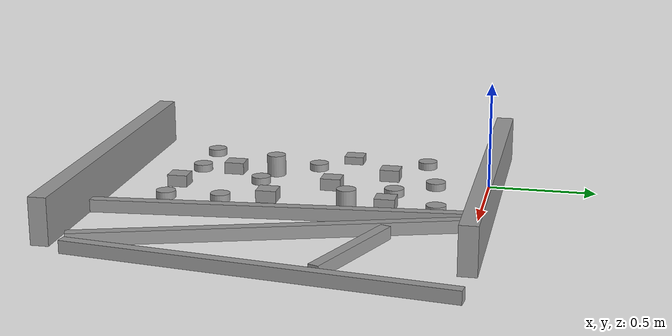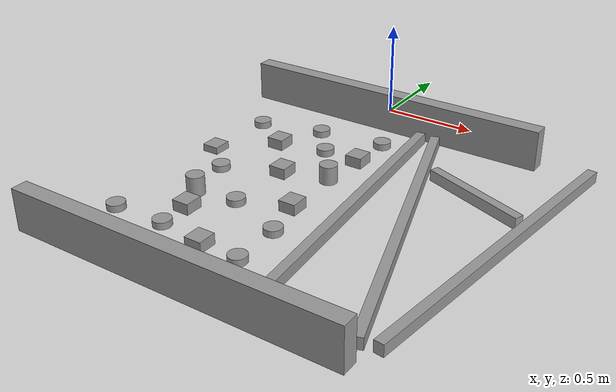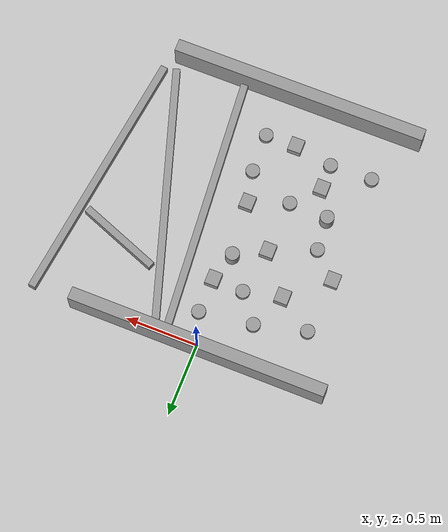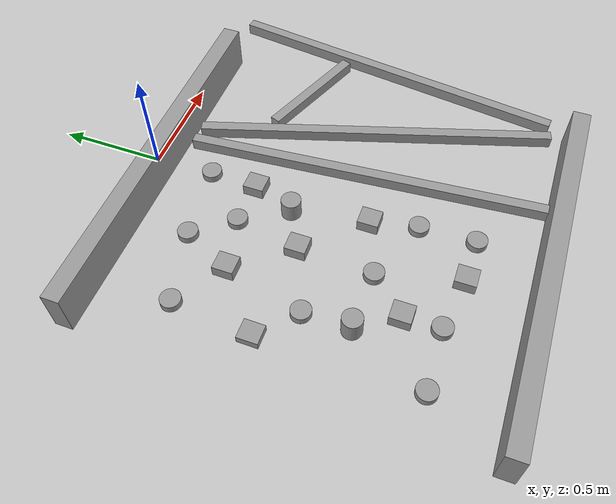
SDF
<sdf version="1.7">
 <model name="complex_terrain">
  <link name="link">
   <inertial>
    <mass>1</mass>
    <inertia>
     <ixx>0.166667</ixx>
     <ixy>0</ixy>
     <ixz>0</ixz>
     <iyy>0.166667</iyy>
     <iyz>0</iyz>
     <izz>0.166667</izz>
    </inertia>
   </inertial>
   <visual name="visual">
    <geometry><box><size>1.79287 0.085937 0.224799</size></box></geometry>
    <material>
     <script><name>Gazebo/Grey</name><uri>file://media/materials/scripts/gazebo.material</uri></script>
     <shader type="pixel"><normal_map>__default__</normal_map></shader>
     <ambient>1 1 1 1</ambient>
     <diffuse>0.7 0.7 0.7 1</diffuse>
     <specular>0.01 0.01 0.01 1</specular>
     <emissive>0 0 0 1</emissive>
    </material>
   </visual>
   <collision name="collision">
    <geometry><box><size>1.79287 0.085937 0.224799</size></box></geometry>
    <surface>
     <friction>
      <ode><mu>1</mu><mu2>1</mu2><fdir1>0 0 0</fdir1><slip1>0</slip1><slip2>0</slip2></ode>
      <torsional>
       <coefficient>1</coefficient>
       <patch_radius>0</patch_radius>
       <surface_radius>0</surface_radius>
       <use_patch_radius>1</use_patch_radius>
       <ode><slip>0</slip></ode>
      </torsional>
     </friction>
     <bounce><restitution_coefficient>0</restitution_coefficient><threshold>1e+06</threshold></bounce>
     <contact>
      <collide_without_contact>0</collide_without_contact>
      <collide_without_contact_bitmask>1</collide_without_contact_bitmask>
      <collide_bitmask>1</collide_bitmask>
      <ode>
       <soft_cfm>0</soft_cfm>
       <soft_erp>0.2</soft_erp>
       <kp>1e+13</kp>
       <kd>1</kd>
       <max_vel>0.01</max_vel>
       <min_depth>0</min_depth>
      </ode>
      <bullet>
       <split_impulse>1</split_impulse>
       <split_impulse_penetration_threshold>-0.01</split_impulse_penetration_threshold>
       <soft_cfm>0</soft_cfm>
       <soft_erp>0.2</soft_erp>
       <kp>1e+13</kp>
       <kd>1</kd>
      </bullet>
     </contact>
    </surface>
   </collision>
  </link>
  <link name="link_1">
   <inertial>
    <mass>0.00035226</mass>
    <inertia><ixx>2.5e-07</ixx><ixy>0</ixy><ixz>0</ixz><iyy>2.5e-07</iyy><iyz>0</iyz><izz>4.2e-07</izz></inertia>
   </inertial>
   <pose>-0.496384 -0.928451 -0.09349 -1e-06 4.2e-05 3e-05</pose>
   <visual name="visual">
    <geometry><cylinder><radius>0.048621</radius><length>0.0373063</length></cylinder></geometry>
    <material>
     <lighting>1</lighting>
     <script><uri>file://media/materials/scripts/gazebo.material</uri><name>Gazebo/Grey</name></script>
     <shader type="pixel"><normal_map>__default__</normal_map></shader>
     <ambient>1 1 1 1</ambient>
     <diffuse>0.7 0.7 0.7 1</diffuse>
     <specular>0.01 0.01 0.01 1</specular>
     <emissive>0 0 0 1</emissive>
    </material>
   </visual>
   <collision name="collision">
    <geometry><cylinder><radius>0.048621</radius><length>0.037306</length></cylinder></geometry>
    <surface>
     <friction>
      <ode><mu>1</mu><mu2>1</mu2><fdir1>0 0 0</fdir1><slip1>0</slip1><slip2>0</slip2></ode>
      <torsional>
       <coefficient>1</coefficient>
       <patch_radius>0</patch_radius>
       <surface_radius>0</surface_radius>
       <use_patch_radius>1</use_patch_radius>
       <ode><slip>0</slip></ode>
      </torsional>
     </friction>
     <bounce><restitution_coefficient>0</restitution_coefficient><threshold>1e+06</threshold></bounce>
     <contact>
      <collide_without_contact>0</collide_without_contact>
      <collide_without_contact_bitmask>1</collide_without_contact_bitmask>
      <collide_bitmask>1</collide_bitmask>
      <ode>
       <soft_cfm>0</soft_cfm>
       <soft_erp>0.2</soft_erp>
       <kp>1e+13</kp>
       <kd>1</kd>
       <max_vel>0.01</max_vel>
       <min_depth>0</min_depth>
      </ode>
      <bullet>
       <split_impulse>1</split_impulse>
       <split_impulse_penetration_threshold>-0.01</split_impulse_penetration_threshold>
       <soft_cfm>0</soft_cfm>
       <soft_erp>0.2</soft_erp>
       <kp>1e+13</kp>
       <kd>1</kd>
      </bullet>
     </contact>
    </surface>
   </collision>
  </link>
  <link name="link_1_clone">
   <inertial>
    <mass>0.00035226</mass>
    <inertia><ixx>2.5e-07</ixx><ixy>0</ixy><ixz>0</ixz><iyy>2.5e-07</iyy><iyz>0</iyz><izz>4.2e-07</izz></inertia>
   </inertial>
   <pose>-0.136256 -0.473534 -0.093484 -2e-06 8.4e-05 6e-05</pose>
   <visual name="visual">
    <geometry><cylinder><radius>0.048621</radius><length>0.0373063</length></cylinder></geometry>
    <material>
     <lighting>1</lighting>
     <script><uri>file://media/materials/scripts/gazebo.material</uri><name>Gazebo/Grey</name></script>
     <shader type="pixel"><normal_map>__default__</normal_map></shader>
     <ambient>1 1 1 1</ambient>
     <diffuse>0.7 0.7 0.7 1</diffuse>
     <specular>0.01 0.01 0.01 1</specular>
     <emissive>0 0 0 1</emissive>
    </material>
   </visual>
   <collision name="collision">
    <geometry><cylinder><radius>0.048621</radius><length>0.037306</length></cylinder></geometry>
    <surface>
     <friction>
      <ode><mu>1</mu><mu2>1</mu2><fdir1>0 0 0</fdir1><slip1>0</slip1><slip2>0</slip2></ode>
      <torsional>
       <coefficient>1</coefficient>
       <patch_radius>0</patch_radius>
       <surface_radius>0</surface_radius>
       <use_patch_radius>1</use_patch_radius>
       <ode><slip>0</slip></ode>
      </torsional>
     </friction>
     <bounce><restitution_coefficient>0</restitution_coefficient><threshold>1e+06</threshold></bounce>
     <contact>
      <collide_without_contact>0</collide_without_contact>
      <collide_without_contact_bitmask>1</collide_without_contact_bitmask>
      <collide_bitmask>1</collide_bitmask>
      <ode>
       <soft_cfm>0</soft_cfm>
       <soft_erp>0.2</soft_erp>
       <kp>1e+13</kp>
       <kd>1</kd>
       <max_vel>0.01</max_vel>
       <min_depth>0</min_depth>
      </ode>
      <bullet>
       <split_impulse>1</split_impulse>
       <split_impulse_penetration_threshold>-0.01</split_impulse_penetration_threshold>
       <soft_cfm>0</soft_cfm>
       <soft_erp>0.2</soft_erp>
       <kp>1e+13</kp>
       <kd>1</kd>
      </bullet>
     </contact>
    </surface>
   </collision>
  </link>
  <link name="link_1_clone_0">
   <inertial>
    <mass>0.00035226</mass>
    <inertia><ixx>2.5e-07</ixx><ixy>0</ixy><ixz>0</ixz><iyy>2.5e-07</iyy><iyz>0</iyz><izz>4.2e-07</izz></inertia>
   </inertial>
   <pose>-0.205542 -1.16693 -0.09348 -2e-06 8.4e-05 6e-05</pose>
   <visual name="visual">
    <geometry><cylinder><radius>0.048621</radius><length>0.0373063</length></cylinder></geometry>
    <material>
     <lighting>1</lighting>
     <script><uri>file://media/materials/scripts/gazebo.material</uri><name>Gazebo/Grey</name></script>
     <shader type="pixel"><normal_map>__default__</normal_map></shader>
     <ambient>1 1 1 1</ambient>
     <diffuse>0.7 0.7 0.7 1</diffuse>
     <specular>0.01 0.01 0.01 1</specular>
     <emissive>0 0 0 1</emissive>
    </material>
   </visual>
   <collision name="collision">
    <geometry><cylinder><radius>0.048621</radius><length>0.037306</length></cylinder></geometry>
    <surface>
     <friction>
      <ode><mu>1</mu><mu2>1</mu2><fdir1>0 0 0</fdir1><slip1>0</slip1><slip2>0</slip2></ode>
      <torsional>
       <coefficient>1</coefficient>
       <patch_radius>0</patch_radius>
       <surface_radius>0</surface_radius>
       <use_patch_radius>1</use_patch_radius>
       <ode><slip>0</slip></ode>
      </torsional>
     </friction>
     <bounce><restitution_coefficient>0</restitution_coefficient><threshold>1e+06</threshold></bounce>
     <contact>
      <collide_without_contact>0</collide_without_contact>
      <collide_without_contact_bitmask>1</collide_without_contact_bitmask>
      <collide_bitmask>1</collide_bitmask>
      <ode>
       <soft_cfm>0</soft_cfm>
       <soft_erp>0.2</soft_erp>
       <kp>1e+13</kp>
       <kd>1</kd>
       <max_vel>0.01</max_vel>
       <min_depth>0</min_depth>
      </ode>
      <bullet>
       <split_impulse>1</split_impulse>
       <split_impulse_penetration_threshold>-0.01</split_impulse_penetration_threshold>
       <soft_cfm>0</soft_cfm>
       <soft_erp>0.2</soft_erp>
       <kp>1e+13</kp>
       <kd>1</kd>
      </bullet>
     </contact>
    </surface>
   </collision>
  </link>
  <link name="link_1_clone_1">
   <inertial>
    <mass>0.00095797</mass>
    <inertia>
     <ixx>1.39e-06</ixx>
     <ixy>0</ixy>
     <ixz>0</ixz>
     <iyy>1.39e-06</iyy>
     <iyz>0</iyz>
     <izz>1.13e-06</izz>
    </inertia>
   </inertial>
   <pose>0.021202 -0.683142 -0.09349 -2e-06 8.4e-05 6e-05</pose>
   <visual name="visual">
    <geometry><cylinder><radius>0.048621</radius><length>0.101455</length></cylinder></geometry>
    <material>
     <lighting>1</lighting>
     <script><uri>file://media/materials/scripts/gazebo.material</uri><name>Gazebo/Grey</name></script>
     <shader type="pixel"><normal_map>__default__</normal_map></shader>
     <ambient>1 1 1 1</ambient>
     <diffuse>0.7 0.7 0.7 1</diffuse>
     <specular>0.01 0.01 0.01 1</specular>
     <emissive>0 0 0 1</emissive>
    </material>
   </visual>
   <collision name="collision">
    <geometry><cylinder><radius>0.048621</radius><length>0.101455</length></cylinder></geometry>
    <surface>
     <friction>
      <ode><mu>1</mu><mu2>1</mu2><fdir1>0 0 0</fdir1><slip1>0</slip1><slip2>0</slip2></ode>
      <torsional>
       <coefficient>1</coefficient>
       <patch_radius>0</patch_radius>
       <surface_radius>0</surface_radius>
       <use_patch_radius>1</use_patch_radius>
       <ode><slip>0</slip></ode>
      </torsional>
     </friction>
     <bounce><restitution_coefficient>0</restitution_coefficient><threshold>1e+06</threshold></bounce>
     <contact>
      <collide_without_contact>0</collide_without_contact>
      <collide_without_contact_bitmask>1</collide_without_contact_bitmask>
      <collide_bitmask>1</collide_bitmask>
      <ode>
       <soft_cfm>0</soft_cfm>
       <soft_erp>0.2</soft_erp>
       <kp>1e+13</kp>
       <kd>1</kd>
       <max_vel>0.01</max_vel>
       <min_depth>0</min_depth>
      </ode>
      <bullet>
       <split_impulse>1</split_impulse>
       <split_impulse_penetration_threshold>-0.01</split_impulse_penetration_threshold>
       <soft_cfm>0</soft_cfm>
       <soft_erp>0.2</soft_erp>
       <kp>1e+13</kp>
       <kd>1</kd>
      </bullet>
     </contact>
    </surface>
   </collision>
  </link>
  <link name="link_1_clone_2">
   <inertial>
    <mass>0.00103254</mass>
    <inertia>
     <ixx>1.64e-06</ixx>
     <ixy>0</ixy>
     <ixz>0</ixz>
     <iyy>1.64e-06</iyy>
     <iyz>0</iyz>
     <izz>1.22e-06</izz>
    </inertia>
   </inertial>
   <pose>-0.478003 -1.15427 -0.093468 -2e-06 8.4e-05 6e-05</pose>
   <visual name="visual">
    <geometry><cylinder><radius>0.048621</radius><length>0.109347</length></cylinder></geometry>
    <material>
     <lighting>1</lighting>
     <script><uri>file://media/materials/scripts/gazebo.material</uri><name>Gazebo/Grey</name></script>
     <shader type="pixel"><normal_map>__default__</normal_map></shader>
     <ambient>1 1 1 1</ambient>
     <diffuse>0.7 0.7 0.7 1</diffuse>
     <specular>0.01 0.01 0.01 1</specular>
     <emissive>0 0 0 1</emissive>
    </material>
   </visual>
   <collision name="collision">
    <geometry><cylinder><radius>0.048621</radius><length>0.109347</length></cylinder></geometry>
    <surface>
     <friction>
      <ode><mu>1</mu><mu2>1</mu2><fdir1>0 0 0</fdir1><slip1>0</slip1><slip2>0</slip2></ode>
      <torsional>
       <coefficient>1</coefficient>
       <patch_radius>0</patch_radius>
       <surface_radius>0</surface_radius>
       <use_patch_radius>1</use_patch_radius>
       <ode><slip>0</slip></ode>
      </torsional>
     </friction>
     <bounce><restitution_coefficient>0</restitution_coefficient><threshold>1e+06</threshold></bounce>
     <contact>
      <collide_without_contact>0</collide_without_contact>
      <collide_without_contact_bitmask>1</collide_without_contact_bitmask>
      <collide_bitmask>1</collide_bitmask>
      <ode>
       <soft_cfm>0</soft_cfm>
       <soft_erp>0.2</soft_erp>
       <kp>1e+13</kp>
       <kd>1</kd>
       <max_vel>0.01</max_vel>
       <min_depth>0</min_depth>
      </ode>
      <bullet>
       <split_impulse>1</split_impulse>
       <split_impulse_penetration_threshold>-0.01</split_impulse_penetration_threshold>
       <soft_cfm>0</soft_cfm>
       <soft_erp>0.2</soft_erp>
       <kp>1e+13</kp>
       <kd>1</kd>
      </bullet>
     </contact>
    </surface>
   </collision>
  </link>
  <link name="link_1_clone_3">
   <inertial>
    <mass>0.00035226</mass>
    <inertia><ixx>2.5e-07</ixx><ixy>0</ixy><ixz>0</ixz><iyy>2.5e-07</iyy><iyz>0</iyz><izz>4.2e-07</izz></inertia>
   </inertial>
   <pose>-0.635782 -0.37601 -0.093463 -2e-06 8.4e-05 6e-05</pose>
   <visual name="visual">
    <geometry><cylinder><radius>0.048621</radius><length>0.0373063</length></cylinder></geometry>
    <material>
     <lighting>1</lighting>
     <script><uri>file://media/materials/scripts/gazebo.material</uri><name>Gazebo/Grey</name></script>
     <shader type="pixel"><normal_map>__default__</normal_map></shader>
     <ambient>1 1 1 1</ambient>
     <diffuse>0.7 0.7 0.7 1</diffuse>
     <specular>0.01 0.01 0.01 1</specular>
     <emissive>0 0 0 1</emissive>
    </material>
   </visual>
   <collision name="collision">
    <geometry><cylinder><radius>0.048621</radius><length>0.037306</length></cylinder></geometry>
    <surface>
     <friction>
      <ode><mu>1</mu><mu2>1</mu2><fdir1>0 0 0</fdir1><slip1>0</slip1><slip2>0</slip2></ode>
      <torsional>
       <coefficient>1</coefficient>
       <patch_radius>0</patch_radius>
       <surface_radius>0</surface_radius>
       <use_patch_radius>1</use_patch_radius>
       <ode><slip>0</slip></ode>
      </torsional>
     </friction>
     <bounce><restitution_coefficient>0</restitution_coefficient><threshold>1e+06</threshold></bounce>
     <contact>
      <collide_without_contact>0</collide_without_contact>
      <collide_without_contact_bitmask>1</collide_without_contact_bitmask>
      <collide_bitmask>1</collide_bitmask>
      <ode>
       <soft_cfm>0</soft_cfm>
       <soft_erp>0.2</soft_erp>
       <kp>1e+13</kp>
       <kd>1</kd>
       <max_vel>0.01</max_vel>
       <min_depth>0</min_depth>
      </ode>
      <bullet>
       <split_impulse>1</split_impulse>
       <split_impulse_penetration_threshold>-0.01</split_impulse_penetration_threshold>
       <soft_cfm>0</soft_cfm>
       <soft_erp>0.2</soft_erp>
       <kp>1e+13</kp>
       <kd>1</kd>
      </bullet>
     </contact>
    </surface>
   </collision>
  </link>
  <link name="link_1_clone_4">
   <inertial>
    <mass>0.00035226</mass>
    <inertia><ixx>2.5e-07</ixx><ixy>0</ixy><ixz>0</ixz><iyy>2.5e-07</iyy><iyz>0</iyz><izz>4.2e-07</izz></inertia>
   </inertial>
   <pose>-0.284409 -0.2871 -0.093478 -2e-06 8.4e-05 6e-05</pose>
   <visual name="visual">
    <geometry><cylinder><radius>0.048621</radius><length>0.0373063</length></cylinder></geometry>
    <material>
     <lighting>1</lighting>
     <script><uri>file://media/materials/scripts/gazebo.material</uri><name>Gazebo/Grey</name></script>
     <shader type="pixel"><normal_map>__default__</normal_map></shader>
     <ambient>1 1 1 1</ambient>
     <diffuse>0.7 0.7 0.7 1</diffuse>
     <specular>0.01 0.01 0.01 1</specular>
     <emissive>0 0 0 1</emissive>
    </material>
   </visual>
   <collision name="collision">
    <geometry><cylinder><radius>0.048621</radius><length>0.037306</length></cylinder></geometry>
    <surface>
     <friction>
      <ode><mu>1</mu><mu2>1</mu2><fdir1>0 0 0</fdir1><slip1>0</slip1><slip2>0</slip2></ode>
      <torsional>
       <coefficient>1</coefficient>
       <patch_radius>0</patch_radius>
       <surface_radius>0</surface_radius>
       <use_patch_radius>1</use_patch_radius>
       <ode><slip>0</slip></ode>
      </torsional>
     </friction>
     <bounce><restitution_coefficient>0</restitution_coefficient><threshold>1e+06</threshold></bounce>
     <contact>
      <collide_without_contact>0</collide_without_contact>
      <collide_without_contact_bitmask>1</collide_without_contact_bitmask>
      <collide_bitmask>1</collide_bitmask>
      <ode>
       <soft_cfm>0</soft_cfm>
       <soft_erp>0.2</soft_erp>
       <kp>1e+13</kp>
       <kd>1</kd>
       <max_vel>0.01</max_vel>
       <min_depth>0</min_depth>
      </ode>
      <bullet>
       <split_impulse>1</split_impulse>
       <split_impulse_penetration_threshold>-0.01</split_impulse_penetration_threshold>
       <soft_cfm>0</soft_cfm>
       <soft_erp>0.2</soft_erp>
       <kp>1e+13</kp>
       <kd>1</kd>
      </bullet>
     </contact>
    </surface>
   </collision>
  </link>
  <link name="link_1_clone_5">
   <inertial>
    <mass>0.00035226</mass>
    <inertia><ixx>2.5e-07</ixx><ixy>0</ixy><ixz>0</ixz><iyy>2.5e-07</iyy><iyz>0</iyz><izz>4.2e-07</izz></inertia>
   </inertial>
   <pose>-0.366811 -1.52069 -0.093473 -2e-06 8.4e-05 6e-05</pose>
   <visual name="visual">
    <geometry><cylinder><radius>0.048621</radius><length>0.0373063</length></cylinder></geometry>
    <material>
     <lighting>1</lighting>
     <script><uri>file://media/materials/scripts/gazebo.material</uri><name>Gazebo/Grey</name></script>
     <shader type="pixel"><normal_map>__default__</normal_map></shader>
     <ambient>1 1 1 1</ambient>
     <diffuse>0.7 0.7 0.7 1</diffuse>
     <specular>0.01 0.01 0.01 1</specular>
     <emissive>0 0 0 1</emissive>
    </material>
   </visual>
   <collision name="collision">
    <geometry><cylinder><radius>0.048621</radius><length>0.037306</length></cylinder></geometry>
    <surface>
     <friction>
      <ode><mu>1</mu><mu2>1</mu2><fdir1>0 0 0</fdir1><slip1>0</slip1><slip2>0</slip2></ode>
      <torsional>
       <coefficient>1</coefficient>
       <patch_radius>0</patch_radius>
       <surface_radius>0</surface_radius>
       <use_patch_radius>1</use_patch_radius>
       <ode><slip>0</slip></ode>
      </torsional>
     </friction>
     <bounce><restitution_coefficient>0</restitution_coefficient><threshold>1e+06</threshold></bounce>
     <contact>
      <collide_without_contact>0</collide_without_contact>
      <collide_without_contact_bitmask>1</collide_without_contact_bitmask>
      <collide_bitmask>1</collide_bitmask>
      <ode>
       <soft_cfm>0</soft_cfm>
       <soft_erp>0.2</soft_erp>
       <kp>1e+13</kp>
       <kd>1</kd>
       <max_vel>0.01</max_vel>
       <min_depth>0</min_depth>
      </ode>
      <bullet>
       <split_impulse>1</split_impulse>
       <split_impulse_penetration_threshold>-0.01</split_impulse_penetration_threshold>
       <soft_cfm>0</soft_cfm>
       <soft_erp>0.2</soft_erp>
       <kp>1e+13</kp>
       <kd>1</kd>
      </bullet>
     </contact>
    </surface>
   </collision>
  </link>
  <link name="link_1_clone_6">
   <inertial>
    <mass>0.00035226</mass>
    <inertia><ixx>2.5e-07</ixx><ixy>0</ixy><ixz>0</ixz><iyy>2.5e-07</iyy><iyz>0</iyz><izz>4.2e-07</izz></inertia>
   </inertial>
   <pose>-0.661559 -1.52878 -0.09346 -2e-06 8.4e-05 6e-05</pose>
   <visual name="visual">
    <geometry><cylinder><radius>0.048621</radius><length>0.0373063</length></cylinder></geometry>
    <material>
     <lighting>1</lighting>
     <script><uri>file://media/materials/scripts/gazebo.material</uri><name>Gazebo/Grey</name></script>
     <shader type="pixel"><normal_map>__default__</normal_map></shader>
     <ambient>1 1 1 1</ambient>
     <diffuse>0.7 0.7 0.7 1</diffuse>
     <specular>0.01 0.01 0.01 1</specular>
     <emissive>0 0 0 1</emissive>
    </material>
   </visual>
   <collision name="collision">
    <geometry><cylinder><radius>0.048621</radius><length>0.037306</length></cylinder></geometry>
    <surface>
     <friction>
      <ode><mu>1</mu><mu2>1</mu2><fdir1>0 0 0</fdir1><slip1>0</slip1><slip2>0</slip2></ode>
      <torsional>
       <coefficient>1</coefficient>
       <patch_radius>0</patch_radius>
       <surface_radius>0</surface_radius>
       <use_patch_radius>1</use_patch_radius>
       <ode><slip>0</slip></ode>
      </torsional>
     </friction>
     <bounce><restitution_coefficient>0</restitution_coefficient><threshold>1e+06</threshold></bounce>
     <contact>
      <collide_without_contact>0</collide_without_contact>
      <collide_without_contact_bitmask>1</collide_without_contact_bitmask>
      <collide_bitmask>1</collide_bitmask>
      <ode>
       <soft_cfm>0</soft_cfm>
       <soft_erp>0.2</soft_erp>
       <kp>1e+13</kp>
       <kd>1</kd>
       <max_vel>0.01</max_vel>
       <min_depth>0</min_depth>
      </ode>
      <bullet>
       <split_impulse>1</split_impulse>
       <split_impulse_penetration_threshold>-0.01</split_impulse_penetration_threshold>
       <soft_cfm>0</soft_cfm>
       <soft_erp>0.2</soft_erp>
       <kp>1e+13</kp>
       <kd>1</kd>
      </bullet>
     </contact>
    </surface>
   </collision>
  </link>
  <link name="link_1_clone_7">
   <inertial>
    <mass>0.00035226</mass>
    <inertia><ixx>2.5e-07</ixx><ixy>0</ixy><ixz>0</ixz><iyy>2.5e-07</iyy><iyz>0</iyz><izz>4.2e-07</izz></inertia>
   </inertial>
   <pose>0.119527 -1.56335 -0.093493 -2e-06 8.4e-05 6e-05</pose>
   <visual name="visual">
    <geometry><cylinder><radius>0.048621</radius><length>0.0373063</length></cylinder></geometry>
    <material>
     <lighting>1</lighting>
     <script><uri>file://media/materials/scripts/gazebo.material</uri><name>Gazebo/Grey</name></script>
     <shader type="pixel"><normal_map>__default__</normal_map></shader>
     <ambient>1 1 1 1</ambient>
     <diffuse>0.7 0.7 0.7 1</diffuse>
     <specular>0.01 0.01 0.01 1</specular>
     <emissive>0 0 0 1</emissive>
    </material>
   </visual>
   <collision name="collision">
    <geometry><cylinder><radius>0.048621</radius><length>0.037306</length></cylinder></geometry>
    <surface>
     <friction>
      <ode><mu>1</mu><mu2>1</mu2><fdir1>0 0 0</fdir1><slip1>0</slip1><slip2>0</slip2></ode>
      <torsional>
       <coefficient>1</coefficient>
       <patch_radius>0</patch_radius>
       <surface_radius>0</surface_radius>
       <use_patch_radius>1</use_patch_radius>
       <ode><slip>0</slip></ode>
      </torsional>
     </friction>
     <bounce><restitution_coefficient>0</restitution_coefficient><threshold>1e+06</threshold></bounce>
     <contact>
      <collide_without_contact>0</collide_without_contact>
      <collide_without_contact_bitmask>1</collide_without_contact_bitmask>
      <collide_bitmask>1</collide_bitmask>
      <ode>
       <soft_cfm>0</soft_cfm>
       <soft_erp>0.2</soft_erp>
       <kp>1e+13</kp>
       <kd>1</kd>
       <max_vel>0.01</max_vel>
       <min_depth>0</min_depth>
      </ode>
      <bullet>
       <split_impulse>1</split_impulse>
       <split_impulse_penetration_threshold>-0.01</split_impulse_penetration_threshold>
       <soft_cfm>0</soft_cfm>
       <soft_erp>0.2</soft_erp>
       <kp>1e+13</kp>
       <kd>1</kd>
      </bullet>
     </contact>
    </surface>
   </collision>
  </link>
  <link name="link_1_clone_8">
   <inertial>
    <mass>0.00035226</mass>
    <inertia><ixx>2.5e-07</ixx><ixy>0</ixy><ixz>0</ixz><iyy>2.5e-07</iyy><iyz>0</iyz><izz>4.2e-07</izz></inertia>
   </inertial>
   <pose>0.111307 -1.28956 -0.093493 -2e-06 8.4e-05 6e-05</pose>
   <visual name="visual">
    <geometry><cylinder><radius>0.048621</radius><length>0.0373063</length></cylinder></geometry>
    <material>
     <lighting>1</lighting>
     <script><uri>file://media/materials/scripts/gazebo.material</uri><name>Gazebo/Grey</name></script>
     <shader type="pixel"><normal_map>__default__</normal_map></shader>
     <ambient>1 1 1 1</ambient>
     <diffuse>0.7 0.7 0.7 1</diffuse>
     <specular>0.01 0.01 0.01 1</specular>
     <emissive>0 0 0 1</emissive>
    </material>
   </visual>
   <collision name="collision">
    <geometry><cylinder><radius>0.048621</radius><length>0.037306</length></cylinder></geometry>
    <surface>
     <friction>
      <ode><mu>1</mu><mu2>1</mu2><fdir1>0 0 0</fdir1><slip1>0</slip1><slip2>0</slip2></ode>
      <torsional>
       <coefficient>1</coefficient>
       <patch_radius>0</patch_radius>
       <surface_radius>0</surface_radius>
       <use_patch_radius>1</use_patch_radius>
       <ode><slip>0</slip></ode>
      </torsional>
     </friction>
     <bounce><restitution_coefficient>0</restitution_coefficient><threshold>1e+06</threshold></bounce>
     <contact>
      <collide_without_contact>0</collide_without_contact>
      <collide_without_contact_bitmask>1</collide_without_contact_bitmask>
      <collide_bitmask>1</collide_bitmask>
      <ode>
       <soft_cfm>0</soft_cfm>
       <soft_erp>0.2</soft_erp>
       <kp>1e+13</kp>
       <kd>1</kd>
       <max_vel>0.01</max_vel>
       <min_depth>0</min_depth>
      </ode>
      <bullet>
       <split_impulse>1</split_impulse>
       <split_impulse_penetration_threshold>-0.01</split_impulse_penetration_threshold>
       <soft_cfm>0</soft_cfm>
       <soft_erp>0.2</soft_erp>
       <kp>1e+13</kp>
       <kd>1</kd>
      </bullet>
     </contact>
    </surface>
   </collision>
  </link>
  <link name="link_1_clone_9">
   <inertial>
    <mass>0.00035226</mass>
    <inertia><ixx>2.5e-07</ixx><ixy>0</ixy><ixz>0</ixz><iyy>2.5e-07</iyy><iyz>0</iyz><izz>4.2e-07</izz></inertia>
   </inertial>
   <pose>0.085398 -0.237561 -0.093493 -2e-06 8.4e-05 6e-05</pose>
   <visual name="visual">
    <geometry><cylinder><radius>0.048621</radius><length>0.0373063</length></cylinder></geometry>
    <material>
     <lighting>1</lighting>
     <script><uri>file://media/materials/scripts/gazebo.material</uri><name>Gazebo/Grey</name></script>
     <shader type="pixel"><normal_map>__default__</normal_map></shader>
     <ambient>1 1 1 1</ambient>
     <diffuse>0.7 0.7 0.7 1</diffuse>
     <specular>0.01 0.01 0.01 1</specular>
     <emissive>0 0 0 1</emissive>
    </material>
   </visual>
   <collision name="collision">
    <geometry><cylinder><radius>0.048621</radius><length>0.037306</length></cylinder></geometry>
    <surface>
     <friction>
      <ode><mu>1</mu><mu2>1</mu2><fdir1>0 0 0</fdir1><slip1>0</slip1><slip2>0</slip2></ode>
      <torsional>
       <coefficient>1</coefficient>
       <patch_radius>0</patch_radius>
       <surface_radius>0</surface_radius>
       <use_patch_radius>1</use_patch_radius>
       <ode><slip>0</slip></ode>
      </torsional>
     </friction>
     <bounce><restitution_coefficient>0</restitution_coefficient><threshold>1e+06</threshold></bounce>
     <contact>
      <collide_without_contact>0</collide_without_contact>
      <collide_without_contact_bitmask>1</collide_without_contact_bitmask>
      <collide_bitmask>1</collide_bitmask>
      <ode>
       <soft_cfm>0</soft_cfm>
       <soft_erp>0.2</soft_erp>
       <kp>1e+13</kp>
       <kd>1</kd>
       <max_vel>0.01</max_vel>
       <min_depth>0</min_depth>
      </ode>
      <bullet>
       <split_impulse>1</split_impulse>
       <split_impulse_penetration_threshold>-0.01</split_impulse_penetration_threshold>
       <soft_cfm>0</soft_cfm>
       <soft_erp>0.2</soft_erp>
       <kp>1e+13</kp>
       <kd>1</kd>
      </bullet>
     </contact>
    </surface>
   </collision>
  </link>
  <link name="link_2">
   <inertial>
    <mass>0.00037591</mass>
    <inertia><ixx>3.6e-07</ixx><ixy>0</ixy><ixz>0</ixz><iyy>3.2e-07</iyy><iyz>0</iyz><izz>5.9e-07</izz></inertia>
   </inertial>
   <pose>-0.664986 -0.768138 -0.091722 -1e-06 4.2e-05 3e-05</pose>
   <visual name="visual">
    <geometry><box><size>0.093697 0.10028 0.039944</size></box></geometry>
    <material>
     <lighting>1</lighting>
     <script><uri>file://media/materials/scripts/gazebo.material</uri><name>Gazebo/Grey</name></script>
     <shader type="pixel"><normal_map>__default__</normal_map></shader>
     <ambient>1 1 1 1</ambient>
     <diffuse>0.7 0.7 0.7 1</diffuse>
     <specular>0.01 0.01 0.01 1</specular>
     <emissive>0 0 0 1</emissive>
    </material>
   </visual>
   <collision name="collision">
    <geometry><box><size>0.093697 0.10028 0.039944</size></box></geometry>
    <surface>
     <friction>
      <ode><mu>1</mu><mu2>1</mu2><fdir1>0 0 0</fdir1><slip1>0</slip1><slip2>0</slip2></ode>
      <torsional>
       <coefficient>1</coefficient>
       <patch_radius>0</patch_radius>
       <surface_radius>0</surface_radius>
       <use_patch_radius>1</use_patch_radius>
       <ode><slip>0</slip></ode>
      </torsional>
     </friction>
     <bounce><restitution_coefficient>0</restitution_coefficient><threshold>1e+06</threshold></bounce>
     <contact>
      <collide_without_contact>0</collide_without_contact>
      <collide_without_contact_bitmask>1</collide_without_contact_bitmask>
      <collide_bitmask>1</collide_bitmask>
      <ode>
       <soft_cfm>0</soft_cfm>
       <soft_erp>0.2</soft_erp>
       <kp>1e+13</kp>
       <kd>1</kd>
       <max_vel>0.01</max_vel>
       <min_depth>0</min_depth>
      </ode>
      <bullet>
       <split_impulse>1</split_impulse>
       <split_impulse_penetration_threshold>-0.01</split_impulse_penetration_threshold>
       <soft_cfm>0</soft_cfm>
       <soft_erp>0.2</soft_erp>
       <kp>1e+13</kp>
       <kd>1</kd>
      </bullet>
     </contact>
    </surface>
   </collision>
  </link>
  <link name="link_2_clone">
   <inertial>
    <mass>0.00055936</mass>
    <inertia><ixx>6.3e-07</ixx><ixy>0</ixy><ixz>0</ixz><iyy>5.7e-07</iyy><iyz>0</iyz><izz>8.8e-07</izz></inertia>
   </inertial>
   <pose>0.060908 -1.0639 -0.082354 -2e-06 8.4e-05 6e-05</pose>
   <visual name="visual">
    <geometry><box><size>0.093697 0.10028 0.059441</size></box></geometry>
    <material>
     <lighting>1</lighting>
     <script><uri>file://media/materials/scripts/gazebo.material</uri><name>Gazebo/Grey</name></script>
     <shader type="pixel"><normal_map>__default__</normal_map></shader>
     <ambient>1 1 1 1</ambient>
     <diffuse>0.7 0.7 0.7 1</diffuse>
     <specular>0.01 0.01 0.01 1</specular>
     <emissive>0 0 0 1</emissive>
    </material>
   </visual>
   <collision name="collision">
    <geometry><box><size>0.093697 0.10028 0.059441</size></box></geometry>
    <surface>
     <friction>
      <ode><mu>1</mu><mu2>1</mu2><fdir1>0 0 0</fdir1><slip1>0</slip1><slip2>0</slip2></ode>
      <torsional>
       <coefficient>1</coefficient>
       <patch_radius>0</patch_radius>
       <surface_radius>0</surface_radius>
       <use_patch_radius>1</use_patch_radius>
       <ode><slip>0</slip></ode>
      </torsional>
     </friction>
     <bounce><restitution_coefficient>0</restitution_coefficient><threshold>1e+06</threshold></bounce>
     <contact>
      <collide_without_contact>0</collide_without_contact>
      <collide_without_contact_bitmask>1</collide_without_contact_bitmask>
      <collide_bitmask>1</collide_bitmask>
      <ode>
       <soft_cfm>0</soft_cfm>
       <soft_erp>0.2</soft_erp>
       <kp>1e+13</kp>
       <kd>1</kd>
       <max_vel>0.01</max_vel>
       <min_depth>0</min_depth>
      </ode>
      <bullet>
       <split_impulse>1</split_impulse>
       <split_impulse_penetration_threshold>-0.01</split_impulse_penetration_threshold>
       <soft_cfm>0</soft_cfm>
       <soft_erp>0.2</soft_erp>
       <kp>1e+13</kp>
       <kd>1</kd>
      </bullet>
     </contact>
    </surface>
   </collision>
  </link>
  <link name="link_2_clone_0">
   <inertial>
    <mass>0.00055936</mass>
    <inertia><ixx>6.3e-07</ixx><ixy>0</ixy><ixz>0</ixz><iyy>5.7e-07</iyy><iyz>0</iyz><izz>8.8e-07</izz></inertia>
   </inertial>
   <pose>0.075918 -0.480889 -0.082356 -2e-06 8.4e-05 6e-05</pose>
   <visual name="visual">
    <geometry><box><size>0.093697 0.10028 0.059441</size></box></geometry>
    <material>
     <lighting>1</lighting>
     <script><uri>file://media/materials/scripts/gazebo.material</uri><name>Gazebo/Grey</name></script>
     <shader type="pixel"><normal_map>__default__</normal_map></shader>
     <ambient>1 1 1 1</ambient>
     <diffuse>0.7 0.7 0.7 1</diffuse>
     <specular>0.01 0.01 0.01 1</specular>
     <emissive>0 0 0 1</emissive>
    </material>
   </visual>
   <collision name="collision">
    <geometry><box><size>0.093697 0.10028 0.059441</size></box></geometry>
    <surface>
     <friction>
      <ode><mu>1</mu><mu2>1</mu2><fdir1>0 0 0</fdir1><slip1>0</slip1><slip2>0</slip2></ode>
      <torsional>
       <coefficient>1</coefficient>
       <patch_radius>0</patch_radius>
       <surface_radius>0</surface_radius>
       <use_patch_radius>1</use_patch_radius>
       <ode><slip>0</slip></ode>
      </torsional>
     </friction>
     <bounce><restitution_coefficient>0</restitution_coefficient><threshold>1e+06</threshold></bounce>
     <contact>
      <collide_without_contact>0</collide_without_contact>
      <collide_without_contact_bitmask>1</collide_without_contact_bitmask>
      <collide_bitmask>1</collide_bitmask>
      <ode>
       <soft_cfm>0</soft_cfm>
       <soft_erp>0.2</soft_erp>
       <kp>1e+13</kp>
       <kd>1</kd>
       <max_vel>0.01</max_vel>
       <min_depth>0</min_depth>
      </ode>
      <bullet>
       <split_impulse>1</split_impulse>
       <split_impulse_penetration_threshold>-0.01</split_impulse_penetration_threshold>
       <soft_cfm>0</soft_cfm>
       <soft_erp>0.2</soft_erp>
       <kp>1e+13</kp>
       <kd>1</kd>
      </bullet>
     </contact>
    </surface>
   </collision>
  </link>
  <link name="link_2_clone_1">
   <inertial>
    <mass>0.00055936</mass>
    <inertia><ixx>6.3e-07</ixx><ixy>0</ixy><ixz>0</ixz><iyy>5.7e-07</iyy><iyz>0</iyz><izz>8.8e-07</izz></inertia>
   </inertial>
   <pose>-0.369599 -1.34236 -0.082336 -2e-06 8.4e-05 6e-05</pose>
   <visual name="visual">
    <geometry><box><size>0.093697 0.10028 0.059441</size></box></geometry>
    <material>
     <lighting>1</lighting>
     <script><uri>file://media/materials/scripts/gazebo.material</uri><name>Gazebo/Grey</name></script>
     <shader type="pixel"><normal_map>__default__</normal_map></shader>
     <ambient>1 1 1 1</ambient>
     <diffuse>0.7 0.7 0.7 1</diffuse>
     <specular>0.01 0.01 0.01 1</specular>
     <emissive>0 0 0 1</emissive>
    </material>
   </visual>
   <collision name="collision">
    <geometry><box><size>0.093697 0.10028 0.059441</size></box></geometry>
    <surface>
     <friction>
      <ode><mu>1</mu><mu2>1</mu2><fdir1>0 0 0</fdir1><slip1>0</slip1><slip2>0</slip2></ode>
      <torsional>
       <coefficient>1</coefficient>
       <patch_radius>0</patch_radius>
       <surface_radius>0</surface_radius>
       <use_patch_radius>1</use_patch_radius>
       <ode><slip>0</slip></ode>
      </torsional>
     </friction>
     <bounce><restitution_coefficient>0</restitution_coefficient><threshold>1e+06</threshold></bounce>
     <contact>
      <collide_without_contact>0</collide_without_contact>
      <collide_without_contact_bitmask>1</collide_without_contact_bitmask>
      <collide_bitmask>1</collide_bitmask>
      <ode>
       <soft_cfm>0</soft_cfm>
       <soft_erp>0.2</soft_erp>
       <kp>1e+13</kp>
       <kd>1</kd>
       <max_vel>0.01</max_vel>
       <min_depth>0</min_depth>
      </ode>
      <bullet>
       <split_impulse>1</split_impulse>
       <split_impulse_penetration_threshold>-0.01</split_impulse_penetration_threshold>
       <soft_cfm>0</soft_cfm>
       <soft_erp>0.2</soft_erp>
       <kp>1e+13</kp>
       <kd>1</kd>
      </bullet>
     </contact>
    </surface>
   </collision>
  </link>
  <link name="link_2_clone_2">
   <inertial>
    <mass>0.00055936</mass>
    <inertia><ixx>6.3e-07</ixx><ixy>0</ixy><ixz>0</ixz><iyy>5.7e-07</iyy><iyz>0</iyz><izz>8.8e-07</izz></inertia>
   </inertial>
   <pose>-0.191104 -0.797788 -0.082344 -2e-06 8.4e-05 6e-05</pose>
   <visual name="visual">
    <geometry><box><size>0.093697 0.10028 0.059441</size></box></geometry>
    <material>
     <lighting>1</lighting>
     <script><uri>file://media/materials/scripts/gazebo.material</uri><name>Gazebo/Grey</name></script>
     <shader type="pixel"><normal_map>__default__</normal_map></shader>
     <ambient>1 1 1 1</ambient>
     <diffuse>0.7 0.7 0.7 1</diffuse>
     <specular>0.01 0.01 0.01 1</specular>
     <emissive>0 0 0 1</emissive>
    </material>
   </visual>
   <collision name="collision">
    <geometry><box><size>0.093697 0.10028 0.059441</size></box></geometry>
    <surface>
     <friction>
      <ode><mu>1</mu><mu2>1</mu2><fdir1>0 0 0</fdir1><slip1>0</slip1><slip2>0</slip2></ode>
      <torsional>
       <coefficient>1</coefficient>
       <patch_radius>0</patch_radius>
       <surface_radius>0</surface_radius>
       <use_patch_radius>1</use_patch_radius>
       <ode><slip>0</slip></ode>
      </torsional>
     </friction>
     <bounce><restitution_coefficient>0</restitution_coefficient><threshold>1e+06</threshold></bounce>
     <contact>
      <collide_without_contact>0</collide_without_contact>
      <collide_without_contact_bitmask>1</collide_without_contact_bitmask>
      <collide_bitmask>1</collide_bitmask>
      <ode>
       <soft_cfm>0</soft_cfm>
       <soft_erp>0.2</soft_erp>
       <kp>1e+13</kp>
       <kd>1</kd>
       <max_vel>0.01</max_vel>
       <min_depth>0</min_depth>
      </ode>
      <bullet>
       <split_impulse>1</split_impulse>
       <split_impulse_penetration_threshold>-0.01</split_impulse_penetration_threshold>
       <soft_cfm>0</soft_cfm>
       <soft_erp>0.2</soft_erp>
       <kp>1e+13</kp>
       <kd>1</kd>
      </bullet>
     </contact>
    </surface>
   </collision>
  </link>
  <link name="link_2_clone_3">
   <inertial>
    <mass>0.00055936</mass>
    <inertia><ixx>6.3e-07</ixx><ixy>0</ixy><ixz>0</ixz><iyy>5.7e-07</iyy><iyz>0</iyz><izz>8.8e-07</izz></inertia>
   </inertial>
   <pose>-0.397486 -0.534115 -0.082336 -2e-06 8.4e-05 6e-05</pose>
   <visual name="visual">
    <geometry><box><size>0.093697 0.10028 0.059441</size></box></geometry>
    <material>
     <lighting>1</lighting>
     <script><uri>file://media/materials/scripts/gazebo.material</uri><name>Gazebo/Grey</name></script>
     <shader type="pixel"><normal_map>__default__</normal_map></shader>
     <ambient>1 1 1 1</ambient>
     <diffuse>0.7 0.7 0.7 1</diffuse>
     <specular>0.01 0.01 0.01 1</specular>
     <emissive>0 0 0 1</emissive>
    </material>
   </visual>
   <collision name="collision">
    <geometry><box><size>0.093697 0.10028 0.059441</size></box></geometry>
    <surface>
     <friction>
      <ode><mu>1</mu><mu2>1</mu2><fdir1>0 0 0</fdir1><slip1>0</slip1><slip2>0</slip2></ode>
      <torsional>
       <coefficient>1</coefficient>
       <patch_radius>0</patch_radius>
       <surface_radius>0</surface_radius>
       <use_patch_radius>1</use_patch_radius>
       <ode><slip>0</slip></ode>
      </torsional>
     </friction>
     <bounce><restitution_coefficient>0</restitution_coefficient><threshold>1e+06</threshold></bounce>
     <contact>
      <collide_without_contact>0</collide_without_contact>
      <collide_without_contact_bitmask>1</collide_without_contact_bitmask>
      <collide_bitmask>1</collide_bitmask>
      <ode>
       <soft_cfm>0</soft_cfm>
       <soft_erp>0.2</soft_erp>
       <kp>1e+13</kp>
       <kd>1</kd>
       <max_vel>0.01</max_vel>
       <min_depth>0</min_depth>
      </ode>
      <bullet>
       <split_impulse>1</split_impulse>
       <split_impulse_penetration_threshold>-0.01</split_impulse_penetration_threshold>
       <soft_cfm>0</soft_cfm>
       <soft_erp>0.2</soft_erp>
       <kp>1e+13</kp>
       <kd>1</kd>
      </bullet>
     </contact>
    </surface>
   </collision>
  </link>
  <link name="link_2_clone_4">
   <inertial>
    <mass>0.00055936</mass>
    <inertia><ixx>6.3e-07</ixx><ixy>0</ixy><ixz>0</ixz><iyy>5.7e-07</iyy><iyz>0</iyz><izz>8.8e-07</izz></inertia>
   </inertial>
   <pose>-0.099361 -1.56242 -0.082347 -2e-06 8.4e-05 6e-05</pose>
   <visual name="visual">
    <geometry><box><size>0.093697 0.10028 0.059441</size></box></geometry>
    <material>
     <lighting>1</lighting>
     <script><uri>file://media/materials/scripts/gazebo.material</uri><name>Gazebo/Grey</name></script>
     <shader type="pixel"><normal_map>__default__</normal_map></shader>
     <ambient>1 1 1 1</ambient>
     <diffuse>0.7 0.7 0.7 1</diffuse>
     <specular>0.01 0.01 0.01 1</specular>
     <emissive>0 0 0 1</emissive>
    </material>
   </visual>
   <collision name="collision">
    <geometry><box><size>0.093697 0.10028 0.059441</size></box></geometry>
    <surface>
     <friction>
      <ode><mu>1</mu><mu2>1</mu2><fdir1>0 0 0</fdir1><slip1>0</slip1><slip2>0</slip2></ode>
      <torsional>
       <coefficient>1</coefficient>
       <patch_radius>0</patch_radius>
       <surface_radius>0</surface_radius>
       <use_patch_radius>1</use_patch_radius>
       <ode><slip>0</slip></ode>
      </torsional>
     </friction>
     <bounce><restitution_coefficient>0</restitution_coefficient><threshold>1e+06</threshold></bounce>
     <contact>
      <collide_without_contact>0</collide_without_contact>
      <collide_without_contact_bitmask>1</collide_without_contact_bitmask>
      <collide_bitmask>1</collide_bitmask>
      <ode>
       <soft_cfm>0</soft_cfm>
       <soft_erp>0.2</soft_erp>
       <kp>1e+13</kp>
       <kd>1</kd>
       <max_vel>0.01</max_vel>
       <min_depth>0</min_depth>
      </ode>
      <bullet>
       <split_impulse>1</split_impulse>
       <split_impulse_penetration_threshold>-0.01</split_impulse_penetration_threshold>
       <soft_cfm>0</soft_cfm>
       <soft_erp>0.2</soft_erp>
       <kp>1e+13</kp>
       <kd>1</kd>
      </bullet>
     </contact>
    </surface>
   </collision>
  </link>
  <link name="link_clone">
   <inertial>
    <mass>1</mass>
    <inertia>
     <ixx>0.166667</ixx>
     <ixy>0</ixy>
     <ixz>0</ixz>
     <iyy>0.166667</iyy>
     <iyz>0</iyz>
     <izz>0.166667</izz>
    </inertia>
   </inertial>
   <pose>0.005872 -1.88581 2e-06 -1e-06 4.2e-05 3e-05</pose>
   <visual name="visual">
    <geometry><box><size>1.79287 0.085937 0.224799</size></box></geometry>
    <material>
     <script><name>Gazebo/Grey</name><uri>file://media/materials/scripts/gazebo.material</uri></script>
     <shader type="pixel"><normal_map>__default__</normal_map></shader>
     <ambient>1 1 1 1</ambient>
     <diffuse>0.7 0.7 0.7 1</diffuse>
     <specular>0.01 0.01 0.01 1</specular>
     <emissive>0 0 0 1</emissive>
    </material>
   </visual>
   <collision name="collision">
    <geometry><box><size>1.79287 0.085937 0.224799</size></box></geometry>
    <surface>
     <friction>
      <ode><mu>1</mu><mu2>1</mu2><fdir1>0 0 0</fdir1><slip1>0</slip1><slip2>0</slip2></ode>
      <torsional>
       <coefficient>1</coefficient>
       <patch_radius>0</patch_radius>
       <surface_radius>0</surface_radius>
       <use_patch_radius>1</use_patch_radius>
       <ode><slip>0</slip></ode>
      </torsional>
     </friction>
     <bounce><restitution_coefficient>0</restitution_coefficient><threshold>1e+06</threshold></bounce>
     <contact>
      <collide_without_contact>0</collide_without_contact>
      <collide_without_contact_bitmask>1</collide_without_contact_bitmask>
      <collide_bitmask>1</collide_bitmask>
      <ode>
       <soft_cfm>0</soft_cfm>
       <soft_erp>0.2</soft_erp>
       <kp>1e+13</kp>
       <kd>1</kd>
       <max_vel>0.01</max_vel>
       <min_depth>0</min_depth>
      </ode>
      <bullet>
       <split_impulse>1</split_impulse>
       <split_impulse_penetration_threshold>-0.01</split_impulse_penetration_threshold>
       <soft_cfm>0</soft_cfm>
       <soft_erp>0.2</soft_erp>
       <kp>1e+13</kp>
       <kd>1</kd>
      </bullet>
     </contact>
    </surface>
   </collision>
  </link>
  <link name="link_clone_0">
   <inertial>
    <mass>0.159573</mass>
    <inertia>
     <ixx>8.324e-05</ixx>
     <ixy>0</ixy>
     <ixz>0</ixz>
     <iyy>0.0427928</iyy>
     <iyz>0</iyz>
     <izz>0.0427785</izz>
    </inertia>
   </inertial>
   <pose>0.596841 -0.924747 -0.081288 -4e-05 1.2e-05 -1.26412</pose>
   <visual name="visual">
    <geometry><box><size>1.79287 0.050923 0.06055</size></box></geometry>
    <material>
     <script><name>Gazebo/Grey</name><uri>file://media/materials/scripts/gazebo.material</uri></script>
     <shader type="pixel"><normal_map>__default__</normal_map></shader>
     <ambient>1 1 1 1</ambient>
     <diffuse>0.7 0.7 0.7 1</diffuse>
     <specular>0.01 0.01 0.01 1</specular>
     <emissive>0 0 0 1</emissive>
    </material>
   </visual>
   <collision name="collision">
    <geometry><box><size>1.79287 0.050923 0.06055</size></box></geometry>
    <surface>
     <friction>
      <ode><mu>1</mu><mu2>1</mu2><fdir1>0 0 0</fdir1><slip1>0</slip1><slip2>0</slip2></ode>
      <torsional>
       <coefficient>1</coefficient>
       <patch_radius>0</patch_radius>
       <surface_radius>0</surface_radius>
       <use_patch_radius>1</use_patch_radius>
       <ode><slip>0</slip></ode>
      </torsional>
     </friction>
     <bounce><restitution_coefficient>0</restitution_coefficient><threshold>1e+06</threshold></bounce>
     <contact>
      <collide_without_contact>0</collide_without_contact>
      <collide_without_contact_bitmask>1</collide_without_contact_bitmask>
      <collide_bitmask>1</collide_bitmask>
      <ode>
       <soft_cfm>0</soft_cfm>
       <soft_erp>0.2</soft_erp>
       <kp>1e+13</kp>
       <kd>1</kd>
       <max_vel>0.01</max_vel>
       <min_depth>0</min_depth>
      </ode>
      <bullet>
       <split_impulse>1</split_impulse>
       <split_impulse_penetration_threshold>-0.01</split_impulse_penetration_threshold>
       <soft_cfm>0</soft_cfm>
       <soft_erp>0.2</soft_erp>
       <kp>1e+13</kp>
       <kd>1</kd>
      </bullet>
     </contact>
    </surface>
   </collision>
  </link>
  <link name="link_clone_0_clone">
   <inertial>
    <mass>0.159573</mass>
    <inertia>
     <ixx>8.324e-05</ixx>
     <ixy>0</ixy>
     <ixz>0</ixz>
     <iyy>0.0427928</iyy>
     <iyz>0</iyz>
     <izz>0.0427785</izz>
    </inertia>
   </inertial>
   <pose>0.313935 -0.962209 -0.081299 -8.4e-05 5e-06 -1.48705</pose>
   <visual name="visual">
    <geometry><box><size>1.79287 0.050923 0.06055</size></box></geometry>
    <material>
     <script><name>Gazebo/Grey</name><uri>file://media/materials/scripts/gazebo.material</uri></script>
     <shader type="pixel"><normal_map>__default__</normal_map></shader>
     <ambient>1 1 1 1</ambient>
     <diffuse>0.7 0.7 0.7 1</diffuse>
     <specular>0.01 0.01 0.01 1</specular>
     <emissive>0 0 0 1</emissive>
    </material>
   </visual>
   <collision name="collision">
    <geometry><box><size>1.79287 0.050923 0.06055</size></box></geometry>
    <surface>
     <friction>
      <ode><mu>1</mu><mu2>1</mu2><fdir1>0 0 0</fdir1><slip1>0</slip1><slip2>0</slip2></ode>
      <torsional>
       <coefficient>1</coefficient>
       <patch_radius>0</patch_radius>
       <surface_radius>0</surface_radius>
       <use_patch_radius>1</use_patch_radius>
       <ode><slip>0</slip></ode>
      </torsional>
     </friction>
     <bounce><restitution_coefficient>0</restitution_coefficient><threshold>1e+06</threshold></bounce>
     <contact>
      <collide_without_contact>0</collide_without_contact>
      <collide_without_contact_bitmask>1</collide_without_contact_bitmask>
      <collide_bitmask>1</collide_bitmask>
      <ode>
       <soft_cfm>0</soft_cfm>
       <soft_erp>0.2</soft_erp>
       <kp>1e+13</kp>
       <kd>1</kd>
       <max_vel>0.01</max_vel>
       <min_depth>0</min_depth>
      </ode>
      <bullet>
       <split_impulse>1</split_impulse>
       <split_impulse_penetration_threshold>-0.01</split_impulse_penetration_threshold>
       <soft_cfm>0</soft_cfm>
       <soft_erp>0.2</soft_erp>
       <kp>1e+13</kp>
       <kd>1</kd>
      </bullet>
     </contact>
    </surface>
   </collision>
  </link>
  <link name="link_clone_0_clone_0">
   <inertial>
    <mass>0.159573</mass>
    <inertia>
     <ixx>8.324e-05</ixx>
     <ixy>0</ixy>
     <ixz>0</ixz>
     <iyy>0.0427928</iyy>
     <iyz>0</iyz>
     <izz>0.0427785</izz>
    </inertia>
   </inertial>
   <pose>1.0655 -0.873055 -0.081371 -8.3e-05 -1.3e-05 -1.69951</pose>
   <visual name="visual">
    <geometry><box><size>1.79287 0.050923 0.06055</size></box></geometry>
    <material>
     <script><name>Gazebo/Grey</name><uri>file://media/materials/scripts/gazebo.material</uri></script>
     <shader type="pixel"><normal_map>__default__</normal_map></shader>
     <ambient>1 1 1 1</ambient>
     <diffuse>0.7 0.7 0.7 1</diffuse>
     <specular>0.01 0.01 0.01 1</specular>
     <emissive>0 0 0 1</emissive>
    </material>
   </visual>
   <collision name="collision">
    <geometry><box><size>1.79287 0.050923 0.06055</size></box></geometry>
    <surface>
     <friction>
      <ode><mu>1</mu><mu2>1</mu2><fdir1>0 0 0</fdir1><slip1>0</slip1><slip2>0</slip2></ode>
      <torsional>
       <coefficient>1</coefficient>
       <patch_radius>0</patch_radius>
       <surface_radius>0</surface_radius>
       <use_patch_radius>1</use_patch_radius>
       <ode><slip>0</slip></ode>
      </torsional>
     </friction>
     <bounce><restitution_coefficient>0</restitution_coefficient><threshold>1e+06</threshold></bounce>
     <contact>
      <collide_without_contact>0</collide_without_contact>
      <collide_without_contact_bitmask>1</collide_without_contact_bitmask>
      <collide_bitmask>1</collide_bitmask>
      <ode>
       <soft_cfm>0</soft_cfm>
       <soft_erp>0.2</soft_erp>
       <kp>1e+13</kp>
       <kd>1</kd>
       <max_vel>0.01</max_vel>
       <min_depth>0</min_depth>
      </ode>
      <bullet>
       <split_impulse>1</split_impulse>
       <split_impulse_penetration_threshold>-0.01</split_impulse_penetration_threshold>
       <soft_cfm>0</soft_cfm>
       <soft_erp>0.2</soft_erp>
       <kp>1e+13</kp>
       <kd>1</kd>
      </bullet>
     </contact>
    </surface>
   </collision>
  </link>
  <link name="link_clone_0_clone_1">
   <inertial>
    <mass>0.0525138</mass>
    <inertia>
     <ixx>2.739e-05</ixx>
     <ixy>0</ixy>
     <ixz>0</ixz>
     <iyy>0.00153941</iyy>
     <iyz>0</iyz>
     <izz>0.00153471</izz>
    </inertia>
   </inertial>
   <pose>0.768284 -0.515318 -0.081374 -3.2e-05 7.8e-05 -0.365883</pose>
   <visual name="visual">
    <geometry><box><size>0.590005 0.050923 0.06055</size></box></geometry>
    <material>
     <script><name>Gazebo/Grey</name><uri>file://media/materials/scripts/gazebo.material</uri></script>
     <shader type="pixel"><normal_map>__default__</normal_map></shader>
     <ambient>1 1 1 1</ambient>
     <diffuse>0.7 0.7 0.7 1</diffuse>
     <specular>0.01 0.01 0.01 1</specular>
     <emissive>0 0 0 1</emissive>
    </material>
   </visual>
   <collision name="collision">
    <geometry><box><size>0.590005 0.050923 0.06055</size></box></geometry>
    <surface>
     <friction>
      <ode><mu>1</mu><mu2>1</mu2><fdir1>0 0 0</fdir1><slip1>0</slip1><slip2>0</slip2></ode>
      <torsional>
       <coefficient>1</coefficient>
       <patch_radius>0</patch_radius>
       <surface_radius>0</surface_radius>
       <use_patch_radius>1</use_patch_radius>
       <ode><slip>0</slip></ode>
      </torsional>
     </friction>
     <bounce><restitution_coefficient>0</restitution_coefficient><threshold>1e+06</threshold></bounce>
     <contact>
      <collide_without_contact>0</collide_without_contact>
      <collide_without_contact_bitmask>1</collide_without_contact_bitmask>
      <collide_bitmask>1</collide_bitmask>
      <ode>
       <soft_cfm>0</soft_cfm>
       <soft_erp>0.2</soft_erp>
       <kp>1e+13</kp>
       <kd>1</kd>
       <max_vel>0.01</max_vel>
       <min_depth>0</min_depth>
      </ode>
      <bullet>
       <split_impulse>1</split_impulse>
       <split_impulse_penetration_threshold>-0.01</split_impulse_penetration_threshold>
       <soft_cfm>0</soft_cfm>
       <soft_erp>0.2</soft_erp>
       <kp>1e+13</kp>
       <kd>1</kd>
      </bullet>
     </contact>
    </surface>
   </collision>
  </link>
  <static>0</static>
 </model>
</sdf>
